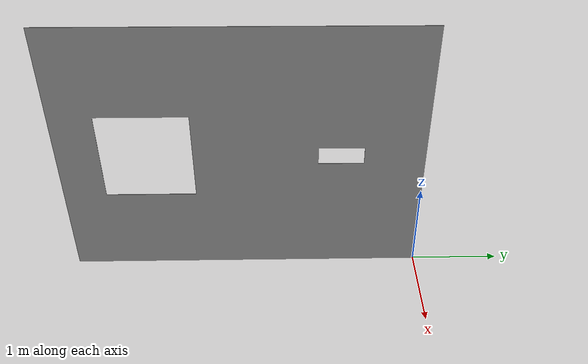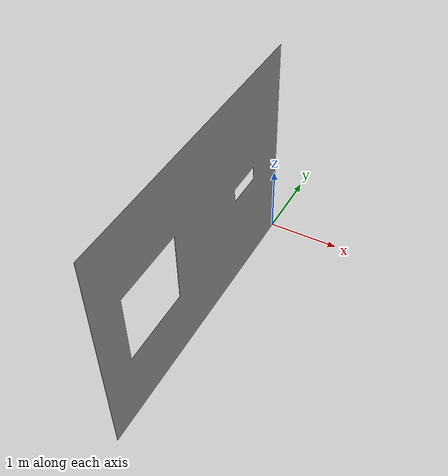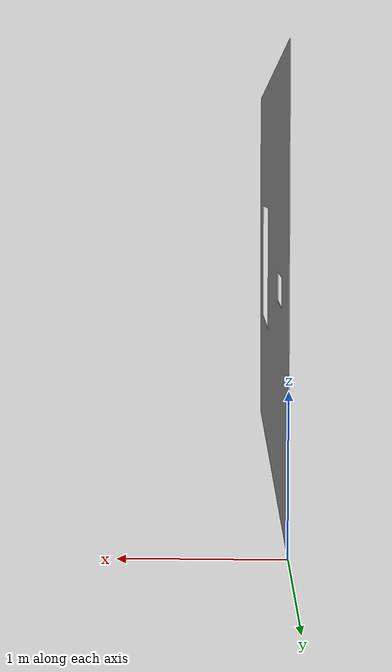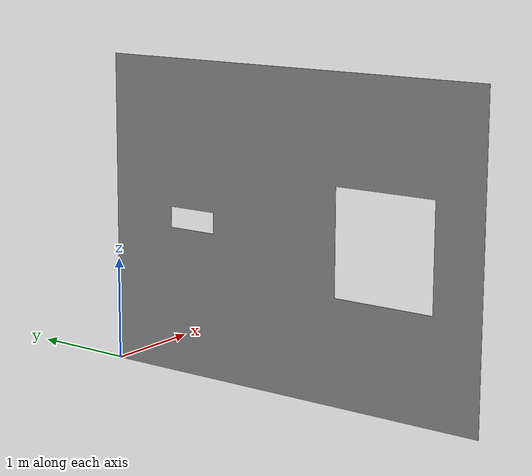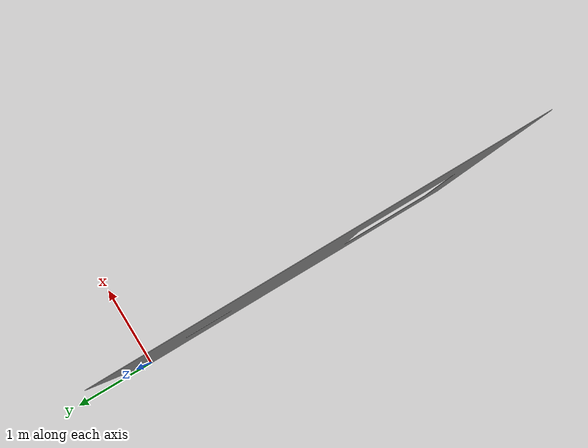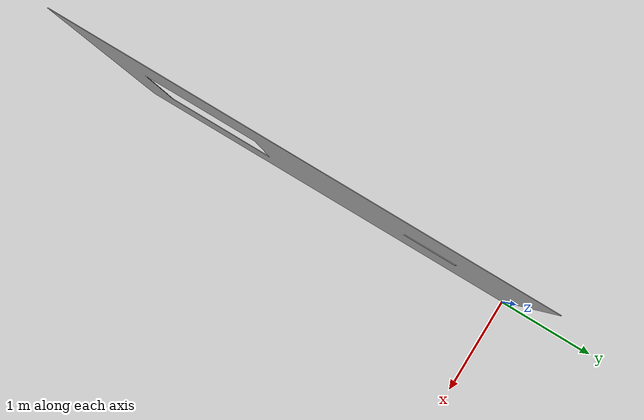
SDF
<?xml version='1.0'?>
<sdf version='1.7'>
  <model name='wall_with_holes'>
    <link name='link_1'>
      <inertial>
        <mass>1</mass>
        <inertia>
          <ixx>0.166667</ixx>
          <ixy>0</ixy>
          <ixz>0</ixz>
          <iyy>0.166667</iyy>
          <iyz>0</iyz>
          <izz>0.166667</izz>
        </inertia>
      </inertial>
      <pose>2e-06 2e-06 -0 1.56618 -0.004242 -1.57078</pose>
      <visual name='visual'>
        <pose>0 0 0 0 -0 0</pose>
        <geometry>
          <mesh>
            <uri>/home/nuc/aerial_navigation_development_environment/src/vehicle_simulator/world/wall.stl</uri>
            <scale>1 1 1</scale>
          </mesh>
        </geometry>
        <material>
          <lighting>1</lighting>
          <script>
            <uri>file://media/materials/scripts/gazebo.material</uri>
            <name>Gazebo/Grey</name>
          </script>
          <shader type='pixel'/>
        </material>
        <transparency>0</transparency>
        <cast_shadows>1</cast_shadows>
      </visual>
      <collision name='collision'>
        <laser_retro>0</laser_retro>
        <max_contacts>10</max_contacts>
        <pose>0 0 0 0 -0 0</pose>
        <geometry>
          <mesh>
            <uri>/home/nuc/aerial_navigation_development_environment/src/vehicle_simulator/world/wall.stl</uri>
            <scale>1 1 1</scale>
          </mesh>
        </geometry>
        <surface>
          <friction>
            <ode>
              <mu>1</mu>
              <mu2>1</mu2>
              <fdir1>0 0 0</fdir1>
              <slip1>0</slip1>
              <slip2>0</slip2>
            </ode>
            <torsional>
              <coefficient>1</coefficient>
              <patch_radius>0</patch_radius>
              <surface_radius>0</surface_radius>
              <use_patch_radius>1</use_patch_radius>
              <ode>
                <slip>0</slip>
              </ode>
            </torsional>
          </friction>
          <bounce>
            <restitution_coefficient>0</restitution_coefficient>
            <threshold>1e+06</threshold>
          </bounce>
          <contact>
            <collide_without_contact>0</collide_without_contact>
            <collide_without_contact_bitmask>1</collide_without_contact_bitmask>
            <collide_bitmask>1</collide_bitmask>
            <ode>
              <soft_cfm>0</soft_cfm>
              <soft_erp>0.2</soft_erp>
              <kp>1e+13</kp>
              <kd>1</kd>
              <max_vel>0.01</max_vel>
              <min_depth>0</min_depth>
            </ode>
            <bullet>
              <split_impulse>1</split_impulse>
              <split_impulse_penetration_threshold>-0.01</split_impulse_penetration_threshold>
              <soft_cfm>0</soft_cfm>
              <soft_erp>0.2</soft_erp>
              <kp>1e+13</kp>
              <kd>1</kd>
            </bullet>
          </contact>
        </surface>
      </collision>
    </link>
    <static>1</static>
    <allow_auto_disable>1</allow_auto_disable>
  </model>
</sdf>
